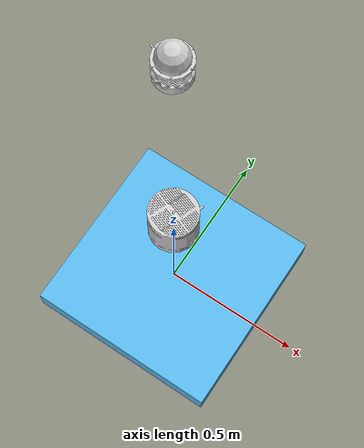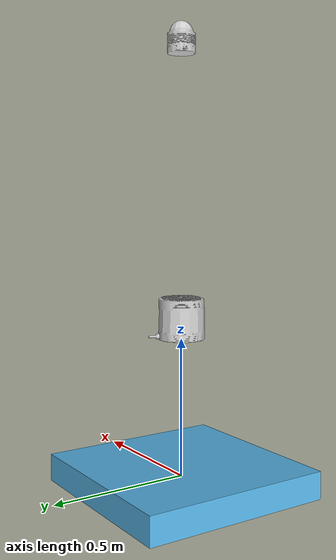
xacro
<?xml version="1.0"?>
<robot xmlns:xacro="http://www.ros.org/wiki/xacro" name="example">
  <xacro:arg name="gpu" default="false"/>
  <xacro:property name="gpu" value="$(arg gpu)" />
  <xacro:arg name="organize_cloud" default="false"/>
  <xacro:property name="organize_cloud" value="$(arg organize_cloud)" />

  <!-- Base Footprint -->
  <link name="base_footprint" />

  <!-- Base Link -->
  <joint name="footprint" type="fixed" >
   <parent link="base_footprint" />
    <child link="base_link" />
    <origin xyz="0 0 0" rpy="0 0 0" />
  </joint>
  <link name="base_link" >
    <visual>
      <geometry>
        <box size="0.7 0.7 0.1"/>
      </geometry>
    </visual>
    <collision>
      <origin rpy="0 0 0" xyz="0 0 0.0"/>
      <geometry>
        <box size="0.7 0.7 0.1"/>
      </geometry>
    </collision>
    <inertial>
      <origin xyz="0 0 0"/>
      <mass value="5"/>
      <inertia ixx="3.0" ixy="0.0" ixz="0.0"
               iyy="3.0" iyz="0.0"
               izz="3.0" />
    </inertial>
  </link>

  <xacro:include filename="$(find robosense_description)/urdf/RS_Ruby.urdf.xacro"/>
  <xacro:RS_Ruby parent="base_link" name="RS_Ruby" topic="/RS_Ruby_points" organize_cloud="${organize_cloud}" hz="10" samples="440" gpu="${gpu}">
    <origin xyz="0 0 0.5" rpy="0 0 0" />
  </xacro:RS_Ruby>

  <xacro:include filename="$(find robosense_description)/urdf/RS_Bpearl.urdf.xacro"/>
  <xacro:RS_Bpearl parent="base_link" name="RS_Bpearl" topic="/RS_Bpearl_points" organize_cloud="${organize_cloud}" hz="10" samples="220" gpu="${gpu}">
    <origin xyz="0 0 1.5" rpy="0 0 0" />
  </xacro:RS_Bpearl>

</robot>

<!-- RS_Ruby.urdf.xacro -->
<robot xmlns:xacro="http://www.ros.org/wiki/xacro" name="RS_Ruby">
  <xacro:property name="M_PI" value="3.1415926535897931" />
  <xacro:macro name="RS_Ruby" params="*origin parent:=base_link name:=RS_Ruby topic:=/RS_Ruby_points organize_cloud:=false hz:=10 lasers:=128 samples:=1800 collision_range:=0.3 min_range:=1.0 max_range:=250.0 noise:=0.008 horizontal_min_angle:=-${M_PI} horizontal_max_angle:=${M_PI} vertical_min_angle:=-${25.0*M_PI/180.0} vertical_max_angle:=${15*M_PI/180.0} gpu:=false">

    <joint name="${name}_base_mount_joint" type="fixed">
      <xacro:insert_block name="origin" />
      <parent link="${parent}"/>
      <child link="${name}_base_link"/>
    </joint>

    <link name="${name}_base_link">
      <inertial>
        <mass value="0.83"/>
        <origin xyz="0 0 0.03585"/>
        <inertia ixx="${(0.83 * (3.0*0.0516*0.0516 + 0.0717*0.0717)) / 12.0}" ixy="0" ixz="0"
          iyy="${(0.83 * (3.0*0.0516*0.0516 + 0.0717*0.0717)) / 12.0}" iyz="0"
          izz="${0.5 * 0.83 * (0.0516*0.0516)}"/>
      </inertial>
      <visual>
        <geometry>
          <mesh filename="package://robosense_description/meshes/RS_Ruby.dae" />
        </geometry>
      </visual>
      <collision>
        <origin rpy="0 0 0" xyz="0 0 0.07425"/>
        <geometry>
          <cylinder radius="0.083" length="0.1485"/>
        </geometry>
      </collision>
    </link>

    <joint name="${name}_base_scan_joint" type="fixed" >
      <origin xyz="0 0 0.07425" rpy="0 0 0" />
      <parent link="${name}_base_link" />
      <child link="${name}"/>
    </joint>

    <link name="${name}">
      <inertial>
        <mass value="0.01"/>
        <origin xyz="0 0 0"/>
        <inertia ixx="1e-7" ixy="0" ixz="0" iyy="1e-7" iyz="0" izz="1e-7"/>
      </inertial>
    </link>

    <!-- Gazebo requires the velodyne_gazebo_plugins package -->
    <gazebo reference="${name}">
      <xacro:if value="${gpu}">
        <sensor type="gpu_ray" name="${name}">
          <pose>0 0 0 0 0 0</pose>
          <visualize>false</visualize>
          <update_rate>${hz}</update_rate>
          <ray>
            <scan>
              <horizontal>
                <samples>${samples}</samples>
                <resolution>1</resolution>
                <min_angle>${horizontal_min_angle}</min_angle>
                <max_angle>${horizontal_max_angle}</max_angle>
              </horizontal>
              <vertical>
                <samples>${lasers}</samples>
                <resolution>1</resolution>
                <min_angle> ${vertical_min_angle}</min_angle>
                <max_angle> ${vertical_max_angle}</max_angle>
              </vertical>
            </scan>
            <range>
              <min>${collision_range}</min>
              <max>${max_range+1}</max>
              <resolution>0.001</resolution>
            </range>
            <noise>
              <type>gaussian</type>
              <mean>0.0</mean>
              <stddev>0.0</stddev>
            </noise>
          </ray>
          <plugin name="gazebo_ros_laser_controller" filename="libgazebo_ros_velodyne_gpu_laser.so">
            <topicName>${topic}</topicName>
            <frameName>${name}</frameName>
            <organize_cloud>${organize_cloud}</organize_cloud>
            <min_range>${min_range}</min_range>
            <max_range>${max_range}</max_range>
            <gaussianNoise>${noise}</gaussianNoise>
          </plugin>
        </sensor>
      </xacro:if>
      <xacro:unless value="${gpu}">
        <sensor type="ray" name="${name}">
          <pose>0 0 0 0 0 0</pose>
          <visualize>false</visualize>
          <update_rate>${hz}</update_rate>
          <ray>
            <scan>
              <horizontal>
                <samples>${samples}</samples>
                <resolution>1</resolution>
                <min_angle>${horizontal_min_angle}</min_angle>
                <max_angle>${horizontal_max_angle}</max_angle>
              </horizontal>
              <vertical>
                <samples>${lasers}</samples>
                <resolution>1</resolution>
                <min_angle> ${vertical_min_angle}</min_angle>
                <max_angle> ${vertical_max_angle}</max_angle>
              </vertical>
            </scan>
            <range>
              <min>${collision_range}</min>
              <max>${max_range+1}</max>
              <resolution>0.001</resolution>
            </range>
            <noise>
              <type>gaussian</type>
              <mean>0.0</mean>
              <stddev>0.0</stddev>
            </noise>
          </ray>
          <plugin name="gazebo_ros_laser_controller" filename="libgazebo_ros_velodyne_laser.so">
            <topicName>${topic}</topicName>
            <frameName>${name}</frameName>
            <organize_cloud>${organize_cloud}</organize_cloud>
            <min_range>${min_range}</min_range>
            <max_range>${max_range}</max_range>
            <gaussianNoise>${noise}</gaussianNoise>
          </plugin>
        </sensor>
      </xacro:unless>
    </gazebo>

  </xacro:macro>
</robot>

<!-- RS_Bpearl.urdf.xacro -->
<robot xmlns:xacro="http://www.ros.org/wiki/xacro" name="RS_Bpearl">
  <xacro:property name="M_PI" value="3.1415926535897931" />
  <xacro:macro name="RS_Bpearl" params="*origin parent:=base_link name:=RS_Bpearl topic:=/RS_Bpearl_points organize_cloud:=false hz:=10 lasers:=32 samples:=1800 collision_range:=0.3 min_range:=0.1 max_range:=100.0 noise:=0.008 horizontal_min_angle:=-${M_PI} horizontal_max_angle:=${M_PI} vertical_min_angle:=${2.3125*M_PI/180.0} vertical_max_angle:=${89.5*M_PI/180.0} gpu:=false">

    <joint name="${name}_base_mount_joint" type="fixed">
      <xacro:insert_block name="origin" />
      <parent link="${parent}"/>
      <child link="${name}_base_link"/>
    </joint>

    <link name="${name}_base_link">
      <inertial>
        <origin xyz="0 0 0"/>
        <mass value="1.0"/>
        <inertia ixx="${(1.0 * (3.0*0.04267*0.04267 + 0.14424*0.14424)) / 12.0}" ixy="0" ixz="0"
          iyy="${(1.0 * (3.0*0.04267*0.04267 + 0.14424*0.14424)) / 12.0}" iyz="0"
          izz="${0.5 * 1.0 * (0.04267*0.04267)}"/>
      </inertial>
      <visual>
        <origin xyz="0 0 0"/>
        <geometry>
          <mesh filename="package://robosense_description/meshes/RS_Bpearl.dae" />
        </geometry>
      </visual>
      <collision>
        <origin xyz="0 0 0.0555"/>
        <geometry>
          <cylinder radius="0.05" length="0.111"/>
        </geometry>
      </collision>
    </link>

    <joint name="${name}_base_scan_joint" type="fixed" >
      <origin xyz="0 0 0.0678" rpy="0 0 0" />
      <parent link="${name}_base_link" />
      <child link="${name}"/>
    </joint>

    <link name="${name}">
      <inertial>
        <mass value="0.01"/>
        <origin xyz="0 0 0"/>
        <inertia ixx="1e-7" ixy="0" ixz="0" iyy="1e-7" iyz="0" izz="1e-7"/>
      </inertial>
    </link>

    <!-- Gazebo requires the velodyne_gazebo_plugins package -->
    <gazebo reference="${name}">
      <xacro:if value="${gpu}">
        <sensor type="gpu_ray" name="${name}">
          <pose>0 0 0 0 0 0</pose>
          <visualize>false</visualize>
          <update_rate>${hz}</update_rate>
          <ray>
            <scan>
              <horizontal>
                <samples>${samples}</samples>
                <resolution>1</resolution>
                <min_angle>${horizontal_min_angle}</min_angle>
                <max_angle>${horizontal_max_angle}</max_angle>
              </horizontal>
              <vertical>
                <samples>${lasers}</samples>
                <resolution>1</resolution>
                <min_angle>${vertical_min_angle}</min_angle>
                <max_angle>${vertical_max_angle}</max_angle>
              </vertical>
            </scan>
            <range>
              <min>${collision_range}</min>
              <max>${max_range+1}</max>
              <resolution>0.001</resolution>
            </range>
            <noise>
              <type>gaussian</type>
              <mean>0.0</mean>
              <stddev>0.0</stddev>
            </noise>
          </ray>
          <plugin name="gazebo_ros_laser_controller" filename="libgazebo_ros_velodyne_gpu_laser.so">
            <topicName>${topic}</topicName>
            <frameName>${name}</frameName>
            <organize_cloud>${organize_cloud}</organize_cloud>
            <min_range>${min_range}</min_range>
            <max_range>${max_range}</max_range>
            <gaussianNoise>${noise}</gaussianNoise>
          </plugin>
        </sensor>
      </xacro:if>
      <xacro:unless value="${gpu}">
        <sensor type="ray" name="${name}">
          <pose>0 0 0 0 0 0</pose>
          <visualize>false</visualize>
          <update_rate>${hz}</update_rate>
          <ray>
            <scan>
              <horizontal>
                <samples>${samples}</samples>
                <resolution>1</resolution>
                <min_angle>${horizontal_min_angle}</min_angle>
                <max_angle>${horizontal_max_angle}</max_angle>
              </horizontal>
              <vertical>
                <samples>${lasers}</samples>
                <resolution>1</resolution>
                <min_angle>${vertical_min_angle}</min_angle>
                <max_angle>${vertical_max_angle}</max_angle>
              </vertical>
            </scan>
            <range>
              <min>${collision_range}</min>
              <max>${max_range+1}</max>
              <resolution>0.001</resolution>
            </range>
            <noise>
              <type>gaussian</type>
              <mean>0.0</mean>
              <stddev>0.0</stddev>
            </noise>
          </ray>
          <plugin name="gazebo_ros_laser_controller" filename="libgazebo_ros_velodyne_laser.so">
            <topicName>${topic}</topicName>
            <frameName>${name}</frameName>
            <organize_cloud>${organize_cloud}</organize_cloud>
            <min_range>${min_range}</min_range>
            <max_range>${max_range}</max_range>
            <gaussianNoise>${noise}</gaussianNoise>
          </plugin>
        </sensor>
      </xacro:unless>
    </gazebo>

  </xacro:macro>
</robot>
